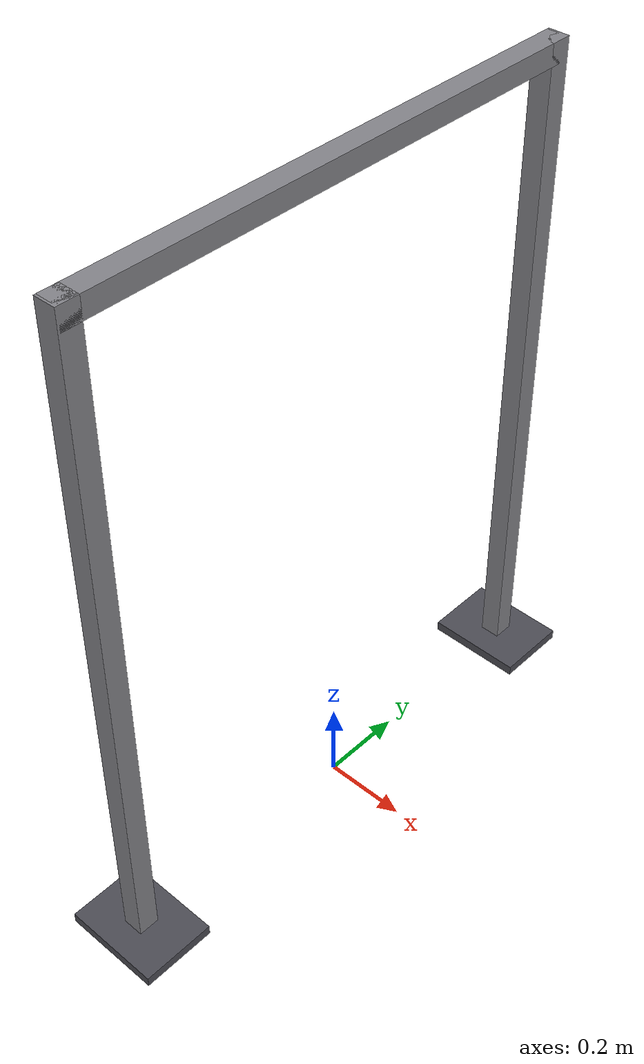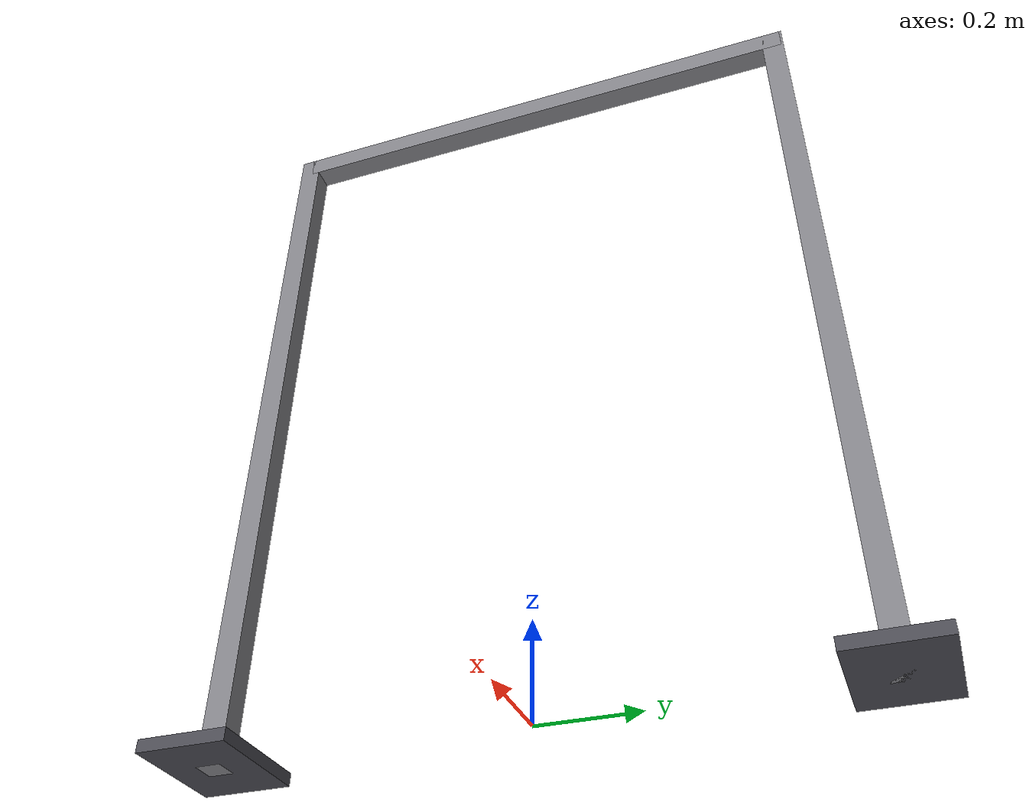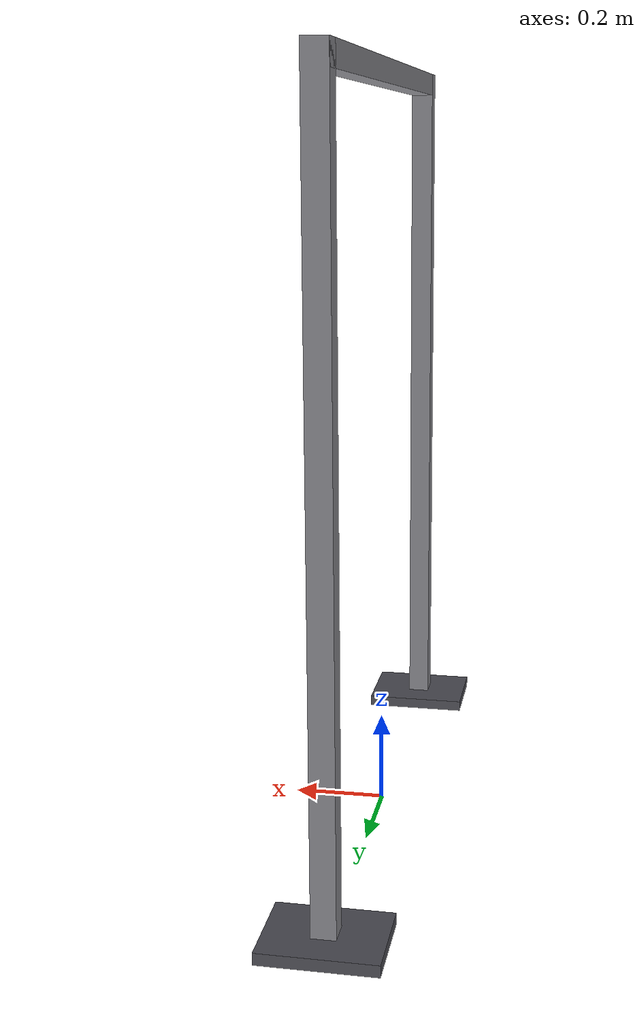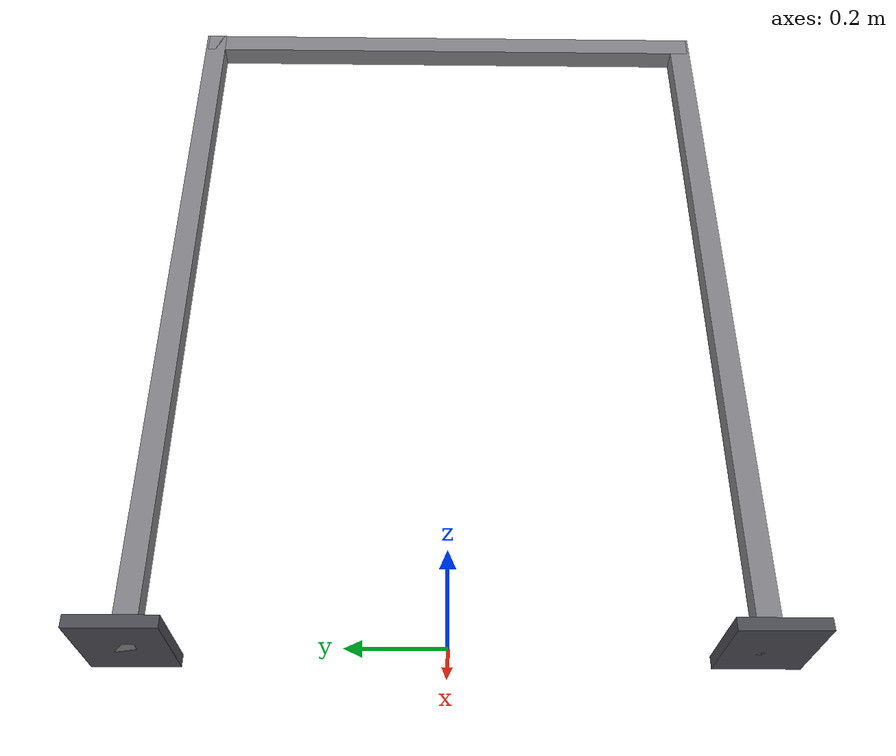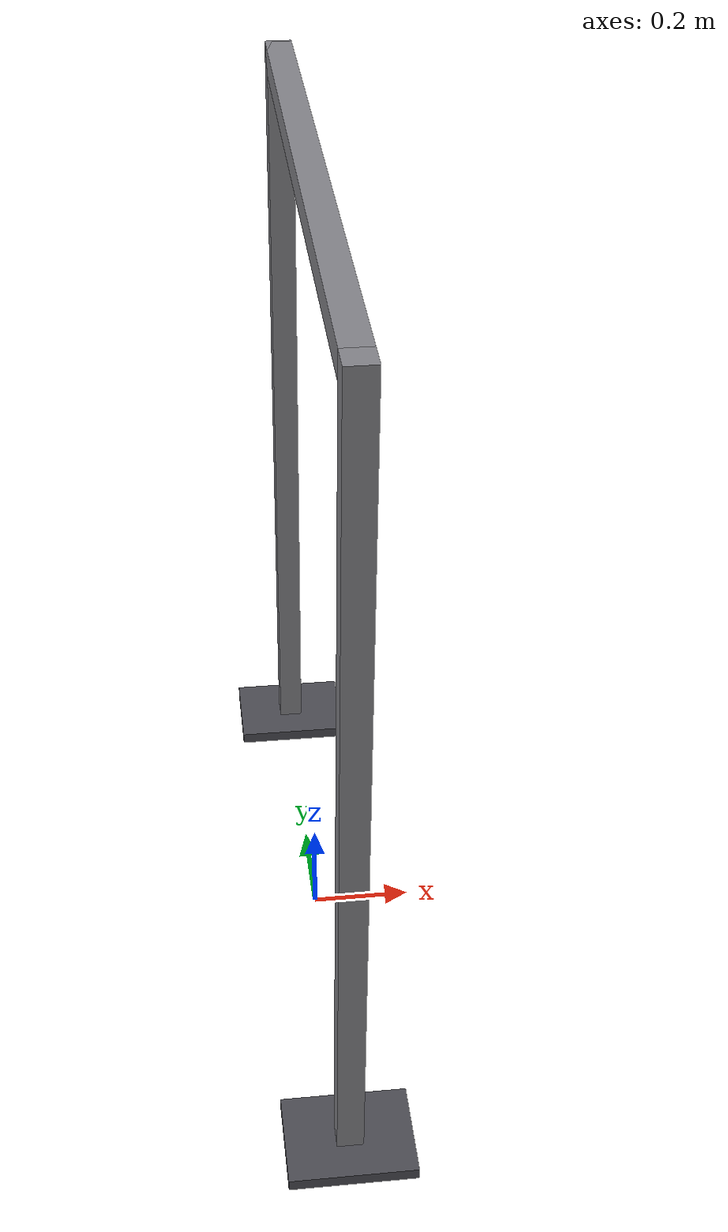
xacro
<?xml version="1.0"?>
<robot name="simple_goalpost_frame" xmlns:xacro="http://ros.org/wiki/xacro">

  <xacro:arg name="post_y" default="0.62"/>
  <xacro:arg name="height" default="1.65"/>
  <xacro:arg name="beam_len_y" default="1.28"/>
  <xacro:arg name="profile" default="0.05"/>
  <xacro:arg name="base_sx" default="0.24"/>
  <xacro:arg name="base_sy" default="0.18"/>
  <xacro:arg name="base_sz" default="0.025"/>

  <xacro:property name="post_y" value="$(arg post_y)"/>
  <xacro:property name="height" value="$(arg height)"/>
  <xacro:property name="beam_len_y" value="$(arg beam_len_y)"/>
  <xacro:property name="profile" value="$(arg profile)"/>
  <xacro:property name="base_sx" value="$(arg base_sx)"/>
  <xacro:property name="base_sy" value="$(arg base_sy)"/>
  <xacro:property name="base_sz" value="$(arg base_sz)"/>

  <material name="frame_light_gray">
    <color rgba="0.52 0.52 0.54 1"/>
  </material>
  <material name="base_dark_gray">
    <color rgba="0.30 0.30 0.33 1"/>
  </material>

  <link name="frame_base">
    <inertial>
      <mass value="80.0"/>
      <inertia ixx="20.0" ixy="0" ixz="0" iyy="15.0" iyz="0" izz="25.0"/>
      <origin xyz="0 0 ${height/2}" rpy="0 0 0"/>
    </inertial>

    <!-- 左立柱 -->
    <visual name="left_post">
      <origin xyz="0 ${-post_y} ${height/2}" rpy="0 0 0"/>
      <geometry><box size="${profile} ${profile} ${height}"/></geometry>
      <material name="frame_light_gray"/>
    </visual>
    <collision name="left_post_col">
      <origin xyz="0 ${-post_y} ${height/2}" rpy="0 0 0"/>
      <geometry><box size="${profile} ${profile} ${height}"/></geometry>
    </collision>

    <!-- 右立柱 -->
    <visual name="right_post">
      <origin xyz="0 ${post_y} ${height/2}" rpy="0 0 0"/>
      <geometry><box size="${profile} ${profile} ${height}"/></geometry>
      <material name="frame_light_gray"/>
    </visual>
    <collision name="right_post_col">
      <origin xyz="0 ${post_y} ${height/2}" rpy="0 0 0"/>
      <geometry><box size="${profile} ${profile} ${height}"/></geometry>
    </collision>

    <!-- 顶部横梁 (沿 Y 连接两立柱) -->
    <visual name="top_beam">
      <origin xyz="0 0 ${height - profile/2}" rpy="0 0 0"/>
      <geometry><box size="${profile} ${beam_len_y} ${profile}"/></geometry>
      <material name="frame_light_gray"/>
    </visual>
    <collision name="top_beam_col">
      <origin xyz="0 0 ${height - profile/2}" rpy="0 0 0"/>
      <geometry><box size="${profile} ${beam_len_y} ${profile}"/></geometry>
    </collision>

    <!-- 左地脚板 -->
    <visual name="left_base_plate">
      <origin xyz="0 ${-post_y} ${base_sz/2}" rpy="0 0 0"/>
      <geometry><box size="${base_sx} ${base_sy} ${base_sz}"/></geometry>
      <material name="base_dark_gray"/>
    </visual>
    <collision name="left_base_col">
      <origin xyz="0 ${-post_y} ${base_sz/2}" rpy="0 0 0"/>
      <geometry><box size="${base_sx} ${base_sy} ${base_sz}"/></geometry>
    </collision>

    <!-- 右地脚板 -->
    <visual name="right_base_plate">
      <origin xyz="0 ${post_y} ${base_sz/2}" rpy="0 0 0"/>
      <geometry><box size="${base_sx} ${base_sy} ${base_sz}"/></geometry>
      <material name="base_dark_gray"/>
    </visual>
    <collision name="right_base_col">
      <origin xyz="0 ${post_y} ${base_sz/2}" rpy="0 0 0"/>
      <geometry><box size="${base_sx} ${base_sy} ${base_sz}"/></geometry>
    </collision>

  </link>

  <gazebo><static>true</static></gazebo>

</robot>
